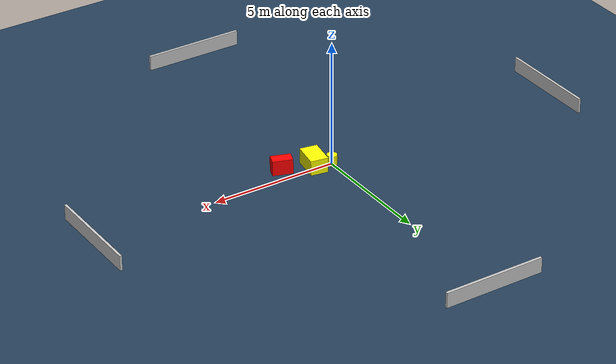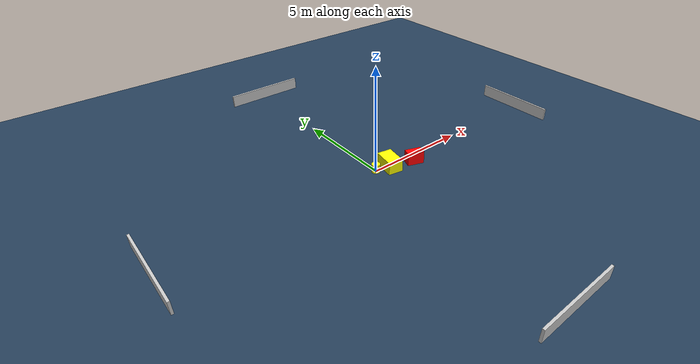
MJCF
<?xml version="1.0" ?>
<mujoco model="generated_environment">
  <option timestep="0.01" integrator="RK4" cone="elliptic"/>
  <default>
    <geom density="1"/>
  </default>
  <asset>
    <texture builtin="gradient" height="3072" name="skybox" rgb1="0.3 0.5 0.7" rgb2="0 0 0" type="skybox" width="512"/>
    <texture builtin="checker" height="300" name="groundplane" rgb1="0.2 0.3 0.4" rgb2="0.1 0.2 0.3" type="2d" width="300"/>
    <material name="groundplane" reflectance="0.2" texrepeat="5 5" texture="groundplane"/>
  </asset>
  <worldbody>
    <light dir="0 0 -1" directional="true" pos="0 0 1.5"/>
    <geom condim="3" friction="0.5 0.005 0.001" material="groundplane" name="floor" pos="0 0 0" size="0 0 0.05" type="plane"/>
    <body name="walls">
      <geom name="wall_1" condim="4" pos="-10.0 0.0 0.3" rgba="0.800000011920929 0.800000011920929 0.800000011920929 1.0" size="0.05 2.0 0.3" type="box"/>
      <geom name="wall_2" condim="4" pos="10.0 0.0 0.3" rgba="0.800000011920929 0.800000011920929 0.800000011920929 1.0" size="0.05 2.0 0.3" type="box"/>
      <geom name="wall_3" condim="4" pos="0.0 -10.0 0.3" rgba="0.800000011920929 0.800000011920929 0.800000011920929 1.0" size="2.0 0.05 0.3" type="box"/>
      <geom name="wall_4" condim="4" pos="0.0 10.0 0.3" rgba="0.800000011920929 0.800000011920929 0.800000011920929 1.0" size="2.0 0.05 0.3" type="box"/>
    </body>
    <body name="robot">
      <joint name="joint_x" type="slide" pos="0 0 0" axis="1 0 0"/>
      <joint name="joint_y" type="slide" pos="0 0 0" axis="0 1 0"/>
      <geom name="robot" type="cylinder" pos="0.0 0.0 0.2" size="0.2 0.2 0.0" mass="5.0" friction="1.0 0.005 0.0001" condim="4" rgba="1.0 1.0 0.0 1.0"/>
    </body>
    <body name="obstacle_1_movable">
      <geom name="obstacle_1_movable" condim="4" pos="0.6921191362460711 -0.16068948154270632 0.3" euler="0 0 80.6449068985247" friction="0.0 0.005 0.001" rgba="1.0 1.0 0.0 1.0" size="0.5206637602486004 0.3491199091678998 0.3" type="box" mass="0.1"/>
      <joint type="free"/>
    </body>
    <body name="obstacle_2_static">
      <geom name="obstacle_2_static" condim="4" pos="1.8615278961866812 -0.5348626950658429 0.3" euler="0 0 160.37404903487644" friction="0.0 0.005 0.001" rgba="1.0 0.0 0.0 1.0" size="0.3924364182382496 0.22098953066569121 0.3" type="box"/>
    </body>
  </worldbody>
  <actuator>
    <motor name="actuator_x" joint="joint_x" gear="1" ctrlrange="-1 1"/>
    <motor name="actuator_y" joint="joint_y" gear="1" ctrlrange="-1 1"/>
  </actuator>
</mujoco>
